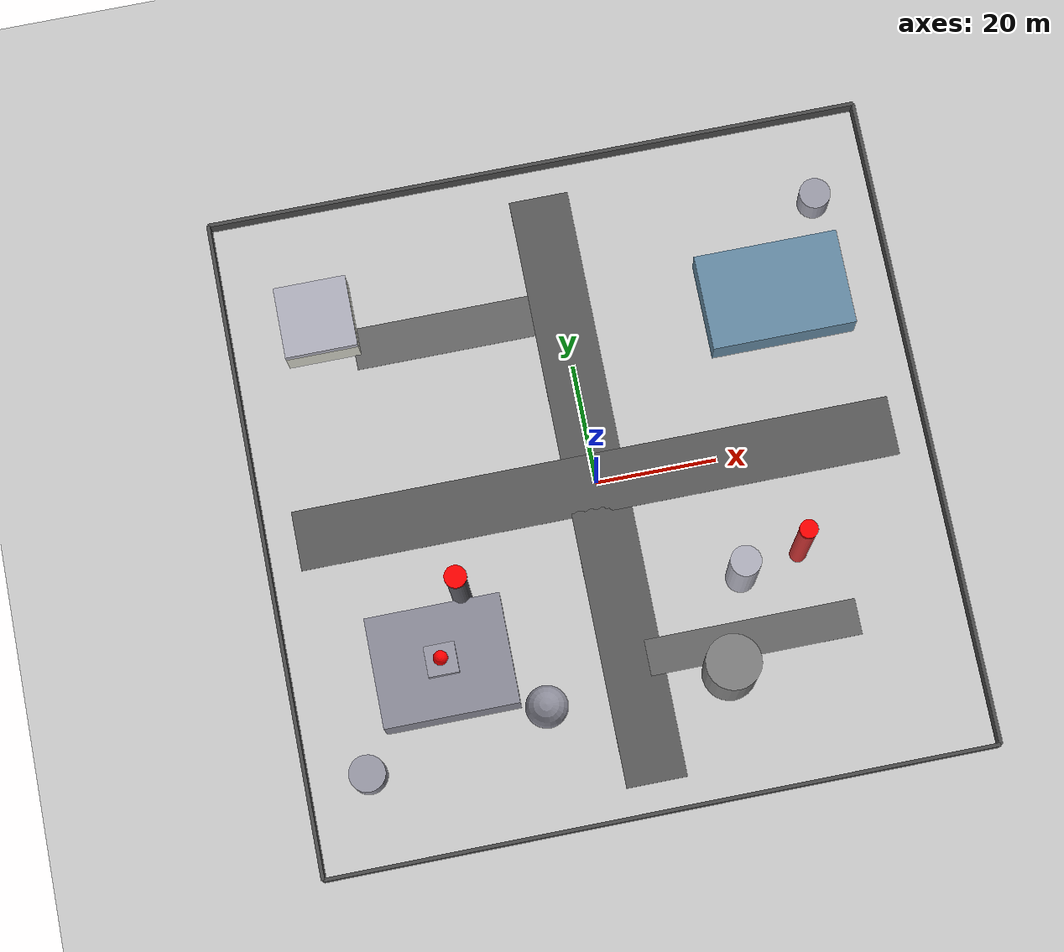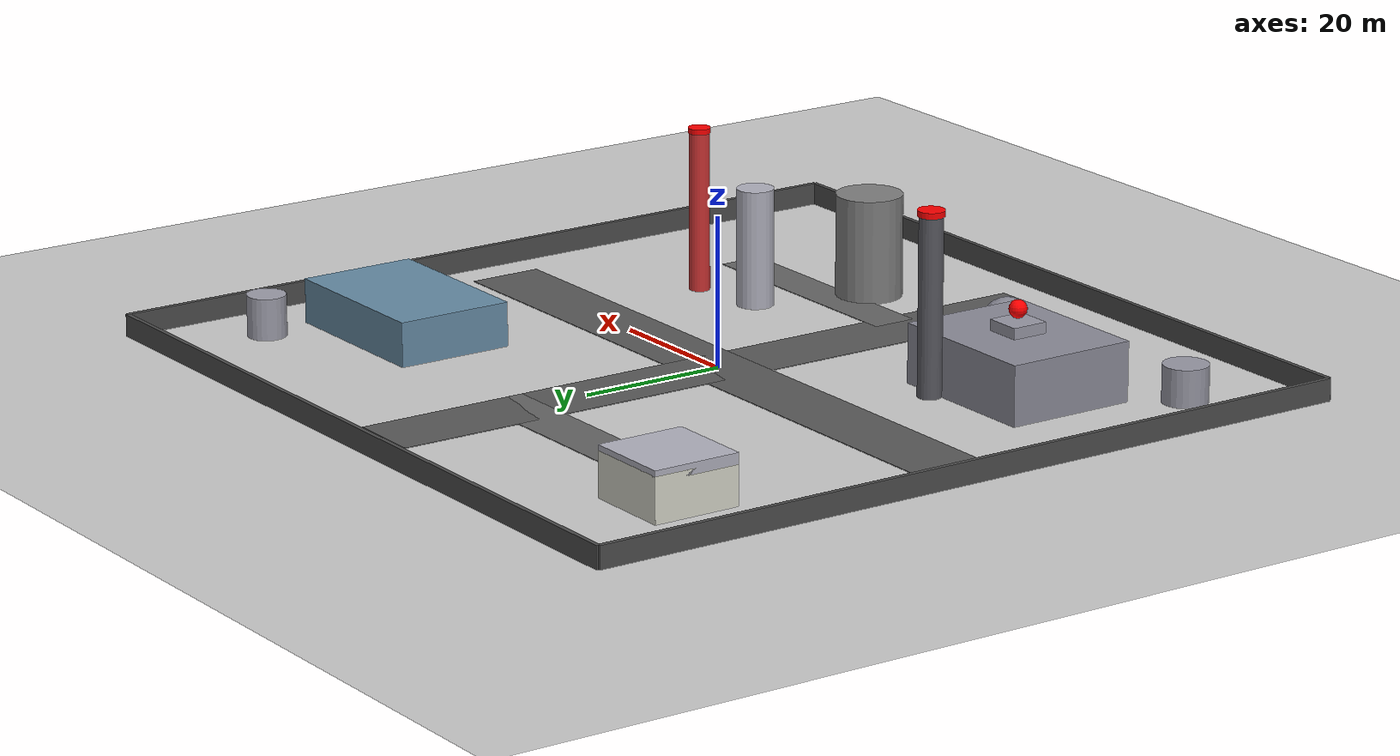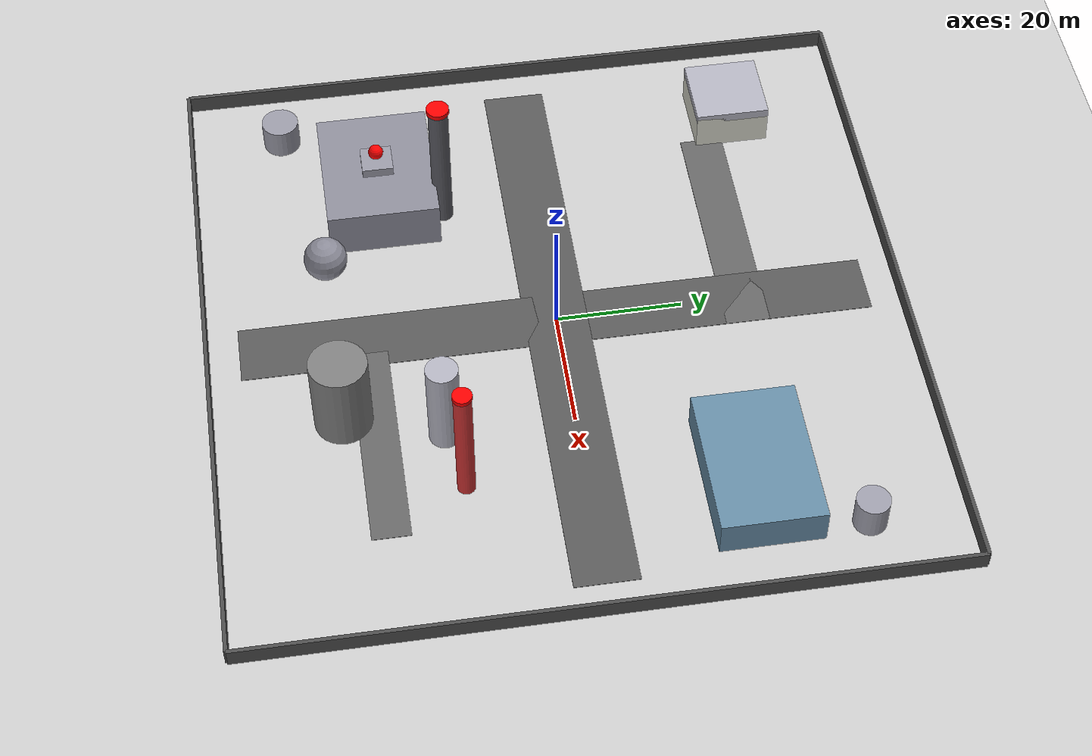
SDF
<sdf version="1.6">
 <world name="industrial_park">
  <include><uri>model://sun</uri></include>
  <include><uri>model://ground_plane</uri></include>
  <physics name="default_physics" type="ode" default="0">
   <gravity>0 0 -9.81</gravity>
   <ode><solver><type>quick</type><iters>10</iters></solver></ode>
  </physics>
  <model name="wall_north">
   <static>true</static>
   <link name="link">
    <pose>0 55 1.5 0 0 0</pose>
    <collision name="collision_north"><geometry><box><size>110 0.6 3</size></box></geometry></collision>
    <visual name="visual_north">
     <geometry><box><size>110 0.6 3</size></box></geometry>
     <material><diffuse>0.3 0.3 0.3 1</diffuse></material>
    </visual>
   </link>
  </model>
  <model name="wall_south">
   <static>true</static>
   <link name="link">
    <pose>0 -55 1.5 0 0 0</pose>
    <collision name="collision_south"><geometry><box><size>110 0.6 3</size></box></geometry></collision>
    <visual name="visual_south">
     <geometry><box><size>110 0.6 3</size></box></geometry>
     <material><diffuse>0.3 0.3 0.3 1</diffuse></material>
    </visual>
   </link>
  </model>
  <model name="wall_east">
   <static>true</static>
   <link name="link">
    <pose>55 0 1.5 0 0 0</pose>
    <collision name="collision_east"><geometry><box><size>0.6 110 3</size></box></geometry></collision>
    <visual name="visual_east">
     <geometry><box><size>0.6 110 3</size></box></geometry>
     <material><diffuse>0.3 0.3 0.3 1</diffuse></material>
    </visual>
   </link>
  </model>
  <model name="wall_west">
   <static>true</static>
   <link name="link">
    <pose>-55 0 1.5 0 0 0</pose>
    <collision name="collision_west"><geometry><box><size>0.6 110 3</size></box></geometry></collision>
    <visual name="visual_west">
     <geometry><box><size>0.6 110 3</size></box></geometry>
     <material><diffuse>0.3 0.3 0.3 1</diffuse></material>
    </visual>
   </link>
  </model>
  <model name="road_horizontal">
   <static>true</static>
   <link name="link">
    <pose>0 0 0.05 0 0 0</pose>
    <visual name="visual_road_h">
     <geometry><box><size>100 10 0.1</size></box></geometry>
     <material><diffuse>0.35 0.35 0.35 1</diffuse></material>
    </visual>
   </link>
  </model>
  <model name="road_vertical">
   <static>true</static>
   <link name="link">
    <pose>0 0 0.05 0 0 1.5708</pose>
    <visual name="visual_road_v">
     <geometry><box><size>100 10 0.1</size></box></geometry>
     <material><diffuse>0.35 0.35 0.35 1</diffuse></material>
    </visual>
   </link>
  </model>
  <model name="road_north_ring">
   <static>true</static>
   <link name="link">
    <pose>-15 30 0.05 0 0 0</pose>
    <visual name="visual_road_n">
     <geometry><box><size>40 7 0.1</size></box></geometry>
     <material><diffuse>0.4 0.4 0.4 1</diffuse></material>
    </visual>
   </link>
  </model>
  <model name="road_south_ring">
   <static>true</static>
   <link name="link">
    <pose>20 -30 0.05 0 0 0</pose>
    <visual name="visual_road_s">
     <geometry><box><size>35 6 0.1</size></box></geometry>
     <material><diffuse>0.4 0.4 0.4 1</diffuse></material>
    </visual>
   </link>
  </model>
  <model name="main_factory">
   <static>true</static>
   <link name="base">
    <pose>-30 -25 4 0 0 0</pose>
    <collision name="collision_base"><geometry><box><size>22 18 8</size></box></geometry></collision>
    <visual name="visual_base">
     <geometry><box><size>22 18 8</size></box></geometry>
     <material><diffuse>0.55 0.55 0.6 1</diffuse></material>
    </visual>
   </link>
   <link name="tower">
    <pose>-30 -25 8 0 0 0</pose>
    <collision name="collision_tower"><geometry><box><size>5 5 3</size></box></geometry></collision>
    <visual name="visual_tower">
     <geometry><box><size>5 5 3</size></box></geometry>
     <material><diffuse>0.6 0.6 0.65 1</diffuse></material>
    </visual>
   </link>
   <joint name="joint_base_tower" type="fixed"><parent>base</parent><child>tower</child></joint>
  </model>
  <model name="distillation_tower">
   <static>true</static>
   <link name="body">
    <pose>20 -20 8 0 0 0</pose>
    <collision name="collision_tower">
     <geometry><cylinder><radius>2.5</radius><length>16</length></cylinder></geometry>
    </collision>
    <visual name="visual_tower">
     <geometry><cylinder><radius>2.5</radius><length>16</length></cylinder></geometry>
     <material><diffuse>0.7 0.7 0.75 1</diffuse></material>
    </visual>
   </link>
  </model>
  <model name="office_building">
   <static>true</static>
   <link name="base">
    <pose>-40 35 3 0 0 0</pose>
    <collision name="collision_base"><geometry><box><size>12 12 6</size></box></geometry></collision>
    <visual name="visual_base">
     <geometry><box><size>12 12 6</size></box></geometry>
     <material><diffuse>0.85 0.85 0.8 1</diffuse></material>
    </visual>
   </link>
   <link name="roof">
    <pose>-40 35 6 0 0 0</pose>
    <collision name="collision_roof"><geometry><box><size>12 12 1.5</size></box></geometry></collision>
    <visual name="visual_roof">
     <geometry><box><size>12 12 1.5</size></box></geometry>
     <material><diffuse>0.7 0.7 0.75 1</diffuse></material>
    </visual>
   </link>
   <joint name="joint_base_roof" type="fixed"><parent>base</parent><child>roof</child></joint>
  </model>
  <model name="warehouse">
   <static>true</static>
   <link name="body">
    <pose>35 25 3 0 0 0</pose>
    <collision name="collision_warehouse"><geometry><box><size>24 16 6</size></box></geometry></collision>
    <visual name="visual_warehouse">
     <geometry><box><size>24 16 6</size></box></geometry>
     <material><diffuse>0.4 0.55 0.65 1</diffuse></material>
    </visual>
   </link>
  </model>
  <model name="cooling_tower">
   <static>true</static>
   <link name="body">
    <pose>15 -35 7 0 0 0</pose>
    <collision name="collision_cooling">
     <geometry><cylinder><radius>4.5</radius><length>14</length></cylinder></geometry>
    </collision>
    <visual name="visual_cooling">
     <geometry><cylinder><radius>4.5</radius><length>14</length></cylinder></geometry>
     <material><diffuse>0.5 0.5 0.5 1</diffuse></material>
    </visual>
   </link>
  </model>
  <model name="tank_A">
   <static>true</static>
   <link name="body">
    <pose>-45 -40 2.5 0 0 0</pose>
    <collision name="collision_tankA">
     <geometry><cylinder><radius>3.0</radius><length>5</length></cylinder></geometry>
    </collision>
    <visual name="visual_tankA">
     <geometry><cylinder><radius>3.0</radius><length>5</length></cylinder></geometry>
     <material><diffuse>0.6 0.6 0.65 1</diffuse></material>
    </visual>
   </link>
  </model>
  <model name="tank_B">
   <static>true</static>
   <link name="body">
    <pose>45 40 2.8 0 0 0</pose>
    <collision name="collision_tankB">
     <geometry><cylinder><radius>2.6</radius><length>5.6</length></cylinder></geometry>
    </collision>
    <visual name="visual_tankB">
     <geometry><cylinder><radius>2.6</radius><length>5.6</length></cylinder></geometry>
     <material><diffuse>0.62 0.62 0.67 1</diffuse></material>
    </visual>
   </link>
  </model>
  <model name="spherical_tank">
   <static>true</static>
   <link name="sphere">
    <pose>-15 -35 3.5 0 0 0</pose>
    <collision name="collision_sphere"><geometry><sphere><radius>3.5</radius></sphere></geometry></collision>
    <visual name="visual_sphere">
     <geometry><sphere><radius>3.5</radius></sphere></geometry>
     <material><diffuse>0.55 0.55 0.6 1</diffuse></material>
    </visual>
   </link>
   <link name="leg1">
    <pose>-15 -35 0 0 0 0</pose>
    <visual name="visual_leg1">
     <geometry><cylinder><radius>0.3</radius><length>3.2</length></cylinder></geometry>
     <material><diffuse>0.45 0.45 0.5 1</diffuse></material>
    </visual>
    <collision name="collision_leg1">
     <geometry><cylinder><radius>0.3</radius><length>3.2</length></cylinder></geometry>
    </collision>
   </link>
   <link name="leg2">
    <pose>-15 -35 0 0 0 0</pose>
    <visual name="visual_leg2">
     <geometry><cylinder><radius>0.3</radius><length>3.2</length></cylinder></geometry>
     <material><diffuse>0.45 0.45 0.5 1</diffuse></material>
    </visual>
    <collision name="collision_leg2">
     <geometry><cylinder><radius>0.3</radius><length>3.2</length></cylinder></geometry>
    </collision>
   </link>
   <link name="leg3">
    <pose>-15 -35 0 0 0 0</pose>
    <visual name="visual_leg3">
     <geometry><cylinder><radius>0.3</radius><length>3.2</length></cylinder></geometry>
     <material><diffuse>0.45 0.45 0.5 1</diffuse></material>
    </visual>
    <collision name="collision_leg3">
     <geometry><cylinder><radius>0.3</radius><length>3.2</length></cylinder></geometry>
    </collision>
   </link>
   <link name="leg4">
    <pose>-15 -35 0 0 0 0</pose>
    <visual name="visual_leg4">
     <geometry><cylinder><radius>0.3</radius><length>3.2</length></cylinder></geometry>
     <material><diffuse>0.45 0.45 0.5 1</diffuse></material>
    </visual>
    <collision name="collision_leg4">
     <geometry><cylinder><radius>0.3</radius><length>3.2</length></cylinder></geometry>
    </collision>
   </link>
   <joint name="joint_leg1" type="fixed">
    <parent>sphere</parent>
    <child>leg1</child>
    <pose>-2.5 -2.5 -3.5 0 0 0</pose>
   </joint>
   <joint name="joint_leg2" type="fixed">
    <parent>sphere</parent>
    <child>leg2</child>
    <pose>2.5 -2.5 -3.5 0 0 0</pose>
   </joint>
   <joint name="joint_leg3" type="fixed">
    <parent>sphere</parent>
    <child>leg3</child>
    <pose>-2.5 2.5 -3.5 0 0 0</pose>
   </joint>
   <joint name="joint_leg4" type="fixed">
    <parent>sphere</parent>
    <child>leg4</child>
    <pose>2.5 2.5 -3.5 0 0 0</pose>
   </joint>
  </model>
  <model name="chimney_high">
   <static>true</static>
   <link name="body">
    <pose>-25 -15 12 0 0 0</pose>
    <collision name="collision_chimney1">
     <geometry><cylinder><radius>1.6</radius><length>24</length></cylinder></geometry>
    </collision>
    <visual name="visual_chimney1">
     <geometry><cylinder><radius>1.6</radius><length>24</length></cylinder></geometry>
     <material><diffuse>0.35 0.35 0.38 1</diffuse></material>
    </visual>
   </link>
  </model>
  <model name="chimney_redwhite">
   <static>true</static>
   <link name="body">
    <pose>30 -18 11 0 0 0</pose>
    <collision name="collision_chimney2">
     <geometry><cylinder><radius>1.4</radius><length>22</length></cylinder></geometry>
    </collision>
    <visual name="visual_chimney2">
     <geometry><cylinder><radius>1.4</radius><length>22</length></cylinder></geometry>
     <material><diffuse>0.8 0.2 0.2 1</diffuse></material>
    </visual>
   </link>
  </model>
  <model name="gas_source_chimney1">
   <static>true</static>
   <link name="emitter">
    <pose>-25 -15 24 0 0 0</pose>
    <visual name="visual_gas1">
     <geometry><cylinder><radius>1.8</radius><length>0.8</length></cylinder></geometry>
     <material><diffuse>1 0 0 1</diffuse><emissive>1 0 0 0.8</emissive></material>
    </visual>
   </link>
  </model>
  <model name="gas_source_chimney2">
   <static>true</static>
   <link name="emitter">
    <pose>30 -18 22 0 0 0</pose>
    <visual name="visual_gas2">
     <geometry><cylinder><radius>1.5</radius><length>0.7</length></cylinder></geometry>
     <material><diffuse>1 0 0 1</diffuse><emissive>1 0 0 0.8</emissive></material>
    </visual>
   </link>
  </model>
  <model name="gas_source_roof">
   <static>true</static>
   <link name="emitter">
    <pose>-30 -25 11 0 0 0</pose>
    <visual name="visual_gas3">
     <geometry><sphere><radius>1.2</radius></sphere></geometry>
     <material><diffuse>1 0 0 1</diffuse><emissive>1 0 0 0.8</emissive></material>
    </visual>
   </link>
  </model>
 </world>
</sdf>
